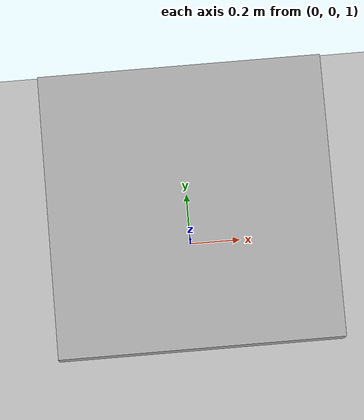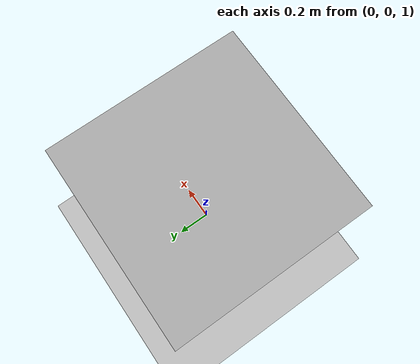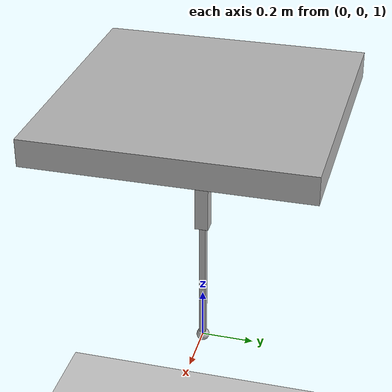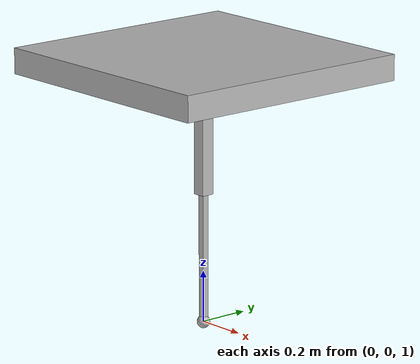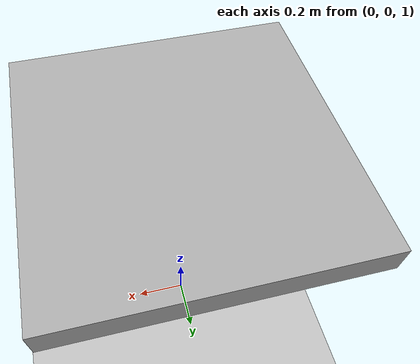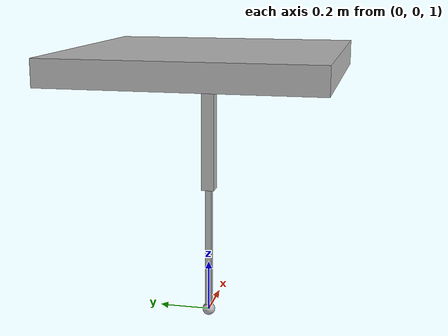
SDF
<?xml version="1.0" ?>
<sdf version="1.5">
  <world name="default">
  <physics type="ode">
    <max_step_size>0.001</max_step_size>
    <real_time_factor>1</real_time_factor>
    <real_time_update_rate>1000</real_time_update_rate>
    <max_contacts>1000</max_contacts>
    <simbody>
      <min_step_size>0.0001</min_step_size>
      <accuracy>0.001</accuracy>
      <max_transient_velocity>0.01</max_transient_velocity>
      <contact>
        <stiffness>1e8</stiffness>
        <dissipation>100</dissipation>
        <plastic_coef_restitution>0.5</plastic_coef_restitution>
        <plastic_impact_velocity>0.5</plastic_impact_velocity>
        <static_friction>0.1</static_friction>
        <dynamic_friction>0.1</dynamic_friction>
        <viscous_friction>0</viscous_friction>
        <override_impact_capture_velocity>0.001</override_impact_capture_velocity>
        <override_stiction_transition_velocity>0.001</override_stiction_transition_velocity>
      </contact>
    </simbody>
    <bullet>
      <solver>
        <type>sequential_impulse</type>
        <min_step_size>1e-5</min_step_size>
        <iters>50</iters>
        <sor>1.3</sor>
      </solver>
      <constraints>
        <cfm>0.0</cfm>
        <erp>0.2</erp>
        <contact_surface_layer>0.001</contact_surface_layer>
        <split_impulse>1</split_impulse>
        <split_impulse_penetration_threshold>-0.01</split_impulse_penetration_threshold>
      </constraints>
    </bullet>
    <ode>
      <solver>
        <type>quick</type>
        <min_step_size>1e-6</min_step_size>
        <iters>50</iters>
        <sor>1.0</sor>
      </solver>
      <constraints>
        <cfm>0.0</cfm>
        <erp>0.6</erp>
        <contact_max_correcting_vel>1e2</contact_max_correcting_vel>
        <contact_surface_layer>1e-5</contact_surface_layer>
      </constraints>
    </ode>
  </physics>
    <!-- Ground -->
    <include>
      <uri>model://ground_plane</uri>
    </include>
    <!-- Links (Lynx) model -->
    <include>
      <uri>model://hopper</uri>
      <pose>0 0 2 0 0 0</pose>
    </include>
    <!-- A global light source -->
    <include>
      <uri>model://sun</uri>
    </include>
  </world>
</sdf>

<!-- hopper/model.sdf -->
<sdf version='1.5'>
  <model name='ROBOT'>
    <plugin name="HopperPlugin" filename="libPacerGazeboPlugin.so"/>
    <link name='BODY'>
      <pose>0 0 0 0 0 0</pose>
      <inertial>
        <mass>10</mass>
        <inertia>
          <ixx>0.005833</ixx>
          <ixy>0.0</ixy>
          <ixz>-0.0</ixz>
          <iyy>0.003033</iyy>
          <iyz>-0.0</iyz>
          <izz>0.008633</izz>
        </inertia>
      </inertial>

      <visual name='BODY_visual'>
        <geometry>
          <box>
            <size>1 1 0.1</size>
          </box>
        </geometry>
      </visual>

      <collision name='BODY_collision'>
        <geometry>
          <box>
            <size>1 1 0.1</size>
          </box>
        </geometry>
      </collision>

    </link>

<!-- =============================== LF leg =============================== -->
    <joint name='LEG_XY_1' type='universal'>
      <pose>-0.0 0.0 0 0 0 0</pose>
      <parent>BODY0</parent>
      <child>LEG_1</child>
      <axis>
        <xyz>1 0 0</xyz>
        <limit>
          <lower>-1e+16</lower>
          <upper>1e+16</upper>
        </limit>
        <dynamics/>
      </axis>
      <axis2>
        <xyz>0 1 0</xyz>
        <limit>
          <lower>-1e+16</lower>
          <upper>1e+16</upper>
        </limit>
        <dynamics/>
      </axis2>
    </joint>

    <link name='LEG_1'>
      <pose>0 0 -0.25 0 0 0</pose>
      <inertial>
        <mass>1</mass>
        <inertia>
          <ixx>0.1</ixx>
          <ixy>0.0</ixy>
          <ixz>0.0</ixz>
          <iyy>0.1</iyy>
          <iyz>0.0</iyz>
          <izz>0.1</izz>
        </inertia>
      </inertial>

      <visual name='leg1_visual'>
        <geometry>
          <box>
            <size>0.05 0.05 0.5</size>
          </box>
        </geometry>
      </visual>

    </link>

    <joint name='LEG_Z_2' type='prismatic'>
      <pose>0.0 0 0 0 0 0</pose>
      <parent>LEG_1</parent>
      <child>LEG_2</child>
      <axis>
        <xyz>0 0 1</xyz>
        <limit>
          <lower>-1e+16</lower>
          <upper>1e+16</upper>
        </limit>
        <dynamics/>
      </axis>
    </joint>

    <link name='FOOT'>
      <pose>0 0 -1 0 0 0</pose>
      <inertial>
        <pose>0 0 0.25 0 0 0</pose>
        <mass>1</mass>
        <inertia>
          <ixx>0.1</ixx>
          <ixy>0.0</ixy>
          <ixz>0.0</ixz>
          <iyy>0.1</iyy>
          <iyz>0.0</iyz>
          <izz>0.1</izz>
        </inertia>
      </inertial>

      <visual name='leg2_visual'>
        <pose>0 0 0.25 0 0 0</pose>
        <geometry>
          <box>
            <size>0.025 0.025 0.5</size>
          </box>
        </geometry>
      </visual>

      <visual name='FOOT_visual'>
        <pose>0 0 0 0 0 0</pose>
        <geometry>
          <sphere>
            <radius>0.025</radius>
          </sphere>
        </geometry>
      </visual>

      <collision name='FOOT_collision'>
        <pose>0 0 0 0 0 0</pose>
        <geometry>
          <sphere>
            <radius>0.025</radius>
          </sphere>
        </geometry>
      </collision>

      <sensor name='FOOT_contact' type='contact'>
        <contact>
          <collision>FOOT_collision</collision>
        </contact>
        <update_rate>1000</update_rate>
      </sensor>
    </link>
  </model>
</sdf>
